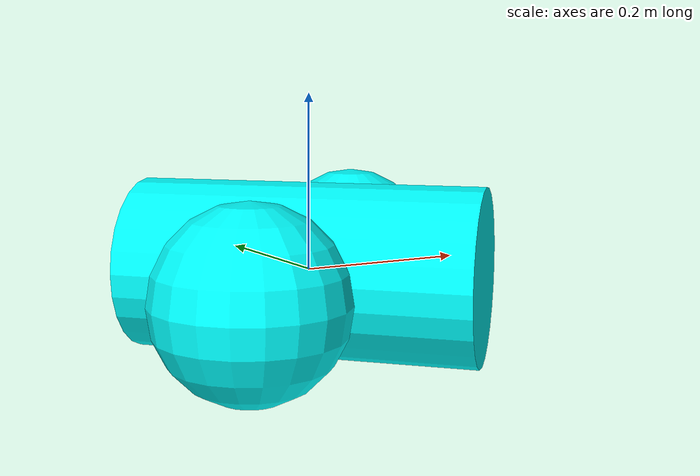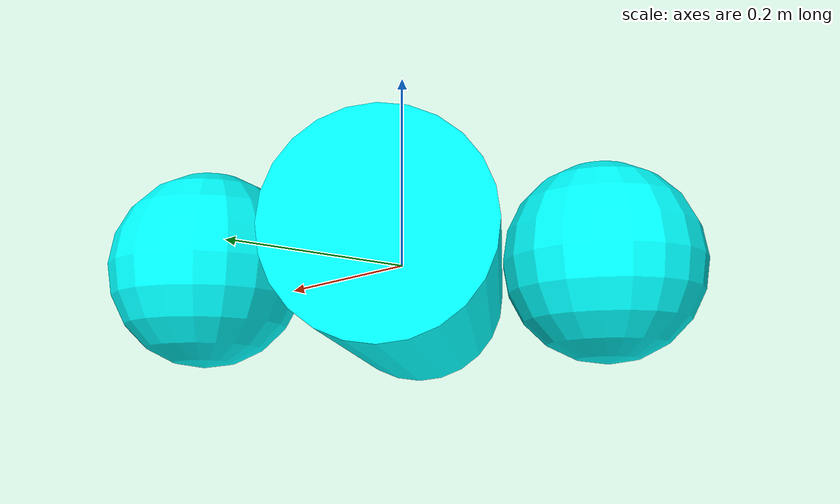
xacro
<?xml version="1.0"?>
<robot xmlns:xacro="http://www.ros.org/wiki/xacro" name="spider">
	<xacro:property name="len_1" value="0.4" />
	<xacro:property name="len_2" value="0.3" />
	<xacro:property name="len_3" value="0.35" />
	<xacro:property name="rad" value="0.1" />
	<xacro:property name="pi" value="3.1457" />
	<xacro:property name="len_sq" value="0.4" />

	<xacro:macro name="leg" params="cyl_num">
		<link name="${cyl_num}">
			<visual>
				<geometry>
					<cylinder length="${len_1}" radius="${rad}"/>
				</geometry>
				<origin rpy="${((2*cyl_num-1)*pi)/4} ${pi/2} 0" xyz="0 0 0"/>
				<material name="yellow">
					<color rgba="0 1 1 1"/>
				</material>
			</visual>
			<visual>
				<geometry>
					<sphere radius="${rad}"/>
				</geometry>
				<origin rpy="0 0 0" xyz="${len_1/2.828427125} ${len_1/2.828427125} 0"/>
				<material name="yellow">
					<color rgba="0 1 1 1"/>
				</material>
			</visual>
			<visual>
				<geometry>
					<sphere radius="${rad}"/>
				</geometry>
				<origin rpy="0 0 0" xyz="${len_1/-2.828427125} ${len_1/-2.828427125} 0"/>
				<material name="yellow">
					<color rgba="0 1 1 1"/>
				</material>
			</visual>
		</link>
	</xacro:macro>

	<xacro:leg cyl_num="1"/>

</robot>
